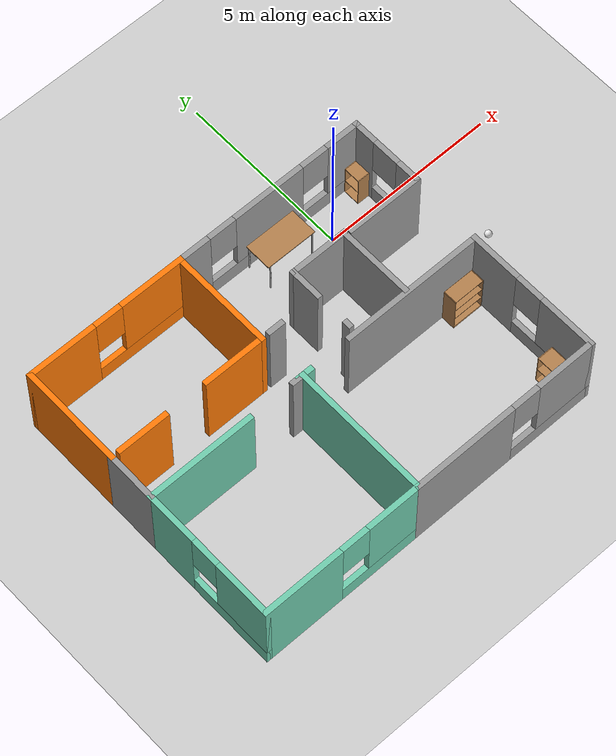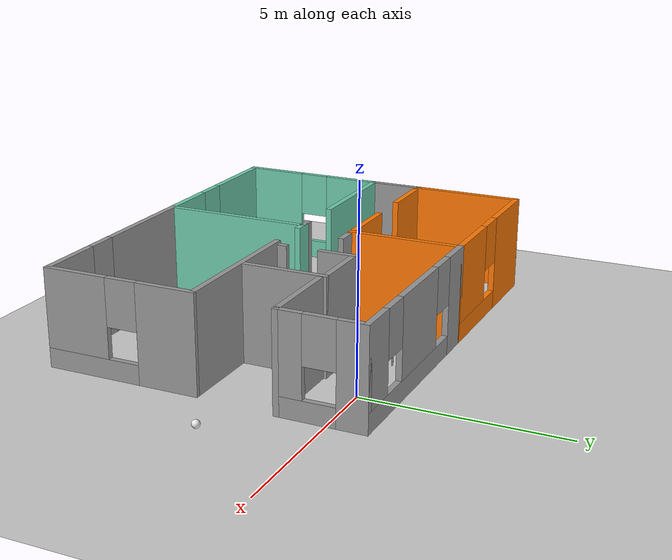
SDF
<sdf version="1.6">
 <world name="default">
  <light name="sun" type="directional">
   <pose>0 0 10 0 -0 0</pose>
   <diffuse>0.8 0.8 0.8 1</diffuse>
   <specular>0.2 0.2 0.2 1</specular>
   <attenuation>
    <range>1000</range>
    <constant>0.9</constant>
    <linear>0.01</linear>
    <quadratic>0.001</quadratic>
   </attenuation>
   <direction>-0.5 0.1 -0.9</direction>
  </light>
  <model name="ground_plane">
   <static>1</static>
   <link name="link">
    <collision name="collision">
     <geometry><plane><normal>0 0 1</normal><size>100 100</size></plane></geometry>
     <surface>
      <contact><collide_bitmask>65535</collide_bitmask></contact>
      <friction><ode><mu>100</mu><mu2>50</mu2></ode></friction>
     </surface>
    </collision>
    <visual name="visual">
     <cast_shadows>0</cast_shadows>
     <geometry><plane><normal>0 0 1</normal><size>100 100</size></plane></geometry>
     <material>
      <script><uri>file://media/materials/scripts/gazebo.material</uri><name>Gazebo/Grey</name></script>
     </material>
    </visual>
   </link>
  </model>
  <gravity>0 0 -9.8</gravity>
  <magnetic_field>6e-06 2.3e-05 -4.2e-05</magnetic_field>
  <atmosphere type="adiabatic"/>
  <physics name="default_physics" default="0" type="ode">
   <max_step_size>0.001</max_step_size>
   <real_time_factor>1</real_time_factor>
   <real_time_update_rate>1000</real_time_update_rate>
  </physics>
  <scene><ambient>0.4 0.4 0.4 1</ambient><background>0.7 0.7 0.7 1</background><shadows>1</shadows></scene>
  <spherical_coordinates>
   <surface_model>EARTH_WGS84</surface_model>
   <latitude_deg>0</latitude_deg>
   <longitude_deg>0</longitude_deg>
   <elevation>0</elevation>
   <heading_deg>0</heading_deg>
  </spherical_coordinates>
  <model name="apartment">
   <pose>-3.48039 -3.11301 0 0 -0 0</pose>
   <link name="Wall_0">
    <collision name="Wall_0_Collision">
     <geometry><box><size>3.0 0.15 2.5</size></box></geometry>
     <pose>0 0 1.25 0 -0 0</pose>
    </collision>
    <visual name="Wall_0_Visual">
     <pose>0 0 1.25 0 -0 0</pose>
     <geometry><box><size>3.0 0.15 2.5</size></box></geometry>
     <material>
      <script><uri>file://media/materials/scripts/gazebo.material</uri><name>Gazebo/Grey</name></script>
      <ambient>0.435294 0.796078 0.67451 1</ambient>
     </material>
     <meta><layer>0</layer></meta>
    </visual>
    <pose>-3.525 -0.175 0 0 -0 3.14159</pose>
   </link>
   <link name="Wall_1">
    <pose>-5.075 -2.1 0 0 0 -1.5708</pose>
    <visual name="Wall_1_Visual_0">
     <pose>-1.23469 0 1.25 0 -0 0</pose>
     <geometry><box><size>1.53062 0.15 2.5</size></box></geometry>
     <material>
      <script><uri>file://media/materials/scripts/gazebo.material</uri><name>Gazebo/Grey</name></script>
      <ambient>0.435294 0.796078 0.67451 1</ambient>
     </material>
     <meta><layer>0</layer></meta>
    </visual>
    <collision name="Wall_1_Collision_0">
     <geometry><box><size>1.53062 0.15 2.5</size></box></geometry>
     <pose>-1.23469 0 1.25 0 -0 0</pose>
    </collision>
    <visual name="Wall_1_Visual_1">
     <pose>0.765309 0 0.25 0 -0 0</pose>
     <geometry><box><size>2.46938 0.15 0.5</size></box></geometry>
     <material>
      <script><uri>file://media/materials/scripts/gazebo.material</uri><name>Gazebo/Grey</name></script>
      <ambient>0.435294 0.796078 0.67451 1</ambient>
     </material>
     <meta><layer>0</layer></meta>
    </visual>
    <collision name="Wall_1_Collision_1">
     <geometry><box><size>2.46938 0.15 0.5</size></box></geometry>
     <pose>0.765309 0 0.25 0 -0 0</pose>
    </collision>
    <visual name="Wall_1_Visual_2">
     <pose>1.16531 0 1.5 0 -0 0</pose>
     <geometry><box><size>1.66938 0.15 2</size></box></geometry>
     <material>
      <script><uri>file://media/materials/scripts/gazebo.material</uri><name>Gazebo/Grey</name></script>
      <ambient>0.435294 0.796078 0.67451 1</ambient>
     </material>
     <meta><layer>0</layer></meta>
    </visual>
    <collision name="Wall_1_Collision_2">
     <geometry><box><size>1.66938 0.15 2</size></box></geometry>
     <pose>1.16531 0 1.5 0 -0 0</pose>
    </collision>
    <visual name="Wall_1_Visual_3">
     <pose>-0.069383 0 1.9 0 -0 0</pose>
     <geometry><box><size>0.8 0.15 1.2</size></box></geometry>
     <material>
      <script><uri>file://media/materials/scripts/gazebo.material</uri><name>Gazebo/Grey</name></script>
      <ambient>0.435294 0.796078 0.67451 1</ambient>
     </material>
     <meta><layer>0</layer></meta>
    </visual>
    <collision name="Wall_1_Collision_3">
     <geometry><box><size>0.8 0.15 1.2</size></box></geometry>
     <pose>-0.069383 0 1.9 0 -0 0</pose>
    </collision>
   </link>
   <link name="Wall_12">
    <collision name="Wall_12_Collision">
     <geometry><box><size>2.25 0.15 2.5</size></box></geometry>
     <pose>0 0 1.25 0 -0 0</pose>
    </collision>
    <visual name="Wall_12_Visual">
     <pose>0 0 1.25 0 -0 0</pose>
     <geometry><box><size>2.25 0.15 2.5</size></box></geometry>
     <material>
      <script><uri>file://media/materials/scripts/gazebo.material</uri><name>Gazebo/Grey</name></script>
      <ambient>1 1 1 1</ambient>
     </material>
     <meta><layer>0</layer></meta>
    </visual>
    <pose>2.80076 0.944198 0 0 -0 1.5708</pose>
   </link>
   <link name="Wall_13">
    <collision name="Wall_13_Collision">
     <geometry><box><size>1.75 0.15 2.5</size></box></geometry>
     <pose>0 0 1.25 0 -0 0</pose>
    </collision>
    <visual name="Wall_13_Visual">
     <pose>0 0 1.25 0 -0 0</pose>
     <geometry><box><size>1.75 0.15 2.5</size></box></geometry>
     <material>
      <script><uri>file://media/materials/scripts/gazebo.material</uri><name>Gazebo/Grey</name></script>
      <ambient>1 1 1 1</ambient>
     </material>
     <meta><layer>0</layer></meta>
    </visual>
    <pose>2.00075 1.9942 0 0 -0 3.14159</pose>
   </link>
   <link name="Wall_18">
    <collision name="Wall_18_Collision">
     <geometry><box><size>1.5 0.15 2.5</size></box></geometry>
     <pose>0 0 1.25 0 -0 0</pose>
    </collision>
    <visual name="Wall_18_Visual">
     <pose>0 0 1.25 0 -0 0</pose>
     <geometry><box><size>1.5 0.15 2.5</size></box></geometry>
     <material>
      <script><uri>file://media/materials/scripts/gazebo.material</uri><name>Gazebo/Grey</name></script>
      <ambient>1 1 1 1</ambient>
     </material>
     <meta><layer>0</layer></meta>
    </visual>
    <pose>-5.075 0.5 0 0 -0 1.5708</pose>
   </link>
   <link name="Wall_19">
    <collision name="Wall_19_Collision">
     <geometry><box><size>1.5 0.15 2.5</size></box></geometry>
     <pose>0 0 1.25 0 -0 0</pose>
    </collision>
    <visual name="Wall_19_Visual">
     <pose>0 0 1.25 0 -0 0</pose>
     <geometry><box><size>1.5 0.15 2.5</size></box></geometry>
     <material>
      <script><uri>file://media/materials/scripts/gazebo.material</uri><name>Gazebo/Grey</name></script>
      <ambient>0.996078 0.47451 0.0196078 1</ambient>
     </material>
     <meta><layer>0</layer></meta>
    </visual>
    <pose>-4.15 1.175 0 0 -0 0</pose>
   </link>
   <link name="Wall_2">
    <pose>-2.775 -4.025 0 0 -0 0</pose>
    <visual name="Wall_2_Visual_0">
     <pose>-1.21423 0 1.25 0 -0 0</pose>
     <geometry><box><size>2.32154 0.15 2.5</size></box></geometry>
     <material>
      <script><uri>file://media/materials/scripts/gazebo.material</uri><name>Gazebo/Grey</name></script>
      <ambient>0.435294 0.796078 0.67451 1</ambient>
     </material>
     <meta><layer>0</layer></meta>
    </visual>
    <collision name="Wall_2_Collision_0">
     <geometry><box><size>2.32154 0.15 2.5</size></box></geometry>
     <pose>-1.21423 0 1.25 0 -0 0</pose>
    </collision>
    <visual name="Wall_2_Visual_1">
     <pose>1.16077 0 0.25 0 -0 0</pose>
     <geometry><box><size>2.42846 0.15 0.5</size></box></geometry>
     <material>
      <script><uri>file://media/materials/scripts/gazebo.material</uri><name>Gazebo/Grey</name></script>
      <ambient>0.435294 0.796078 0.67451 1</ambient>
     </material>
     <meta><layer>0</layer></meta>
    </visual>
    <collision name="Wall_2_Collision_1">
     <geometry><box><size>2.42846 0.15 0.5</size></box></geometry>
     <pose>1.16077 0 0.25 0 -0 0</pose>
    </collision>
    <visual name="Wall_2_Visual_2">
     <pose>1.56077 0 1.5 0 -0 0</pose>
     <geometry><box><size>1.62846 0.15 2</size></box></geometry>
     <material>
      <script><uri>file://media/materials/scripts/gazebo.material</uri><name>Gazebo/Grey</name></script>
      <ambient>0.435294 0.796078 0.67451 1</ambient>
     </material>
     <meta><layer>0</layer></meta>
    </visual>
    <collision name="Wall_2_Collision_2">
     <geometry><box><size>1.62846 0.15 2</size></box></geometry>
     <pose>1.56077 0 1.5 0 -0 0</pose>
    </collision>
    <visual name="Wall_2_Visual_3">
     <pose>0.346537 0 1.9 0 -0 0</pose>
     <geometry><box><size>0.8 0.15 1.2</size></box></geometry>
     <material>
      <script><uri>file://media/materials/scripts/gazebo.material</uri><name>Gazebo/Grey</name></script>
      <ambient>0.435294 0.796078 0.67451 1</ambient>
     </material>
     <meta><layer>0</layer></meta>
    </visual>
    <collision name="Wall_2_Collision_3">
     <geometry><box><size>0.8 0.15 1.2</size></box></geometry>
     <pose>0.346537 0 1.9 0 -0 0</pose>
    </collision>
   </link>
   <link name="Wall_21">
    <collision name="Wall_21_Collision">
     <geometry><box><size>1.7 0.15 2.5</size></box></geometry>
     <pose>0 0 1.25 0 -0 0</pose>
    </collision>
    <visual name="Wall_21_Visual">
     <pose>0 0 1.25 0 -0 0</pose>
     <geometry><box><size>1.7 0.15 2.5</size></box></geometry>
     <material>
      <script><uri>file://media/materials/scripts/gazebo.material</uri><name>Gazebo/Grey</name></script>
      <ambient>0.996078 0.47451 0.0196078 1</ambient>
     </material>
     <meta><layer>0</layer></meta>
    </visual>
    <pose>-1.45 1.175 0 0 -0 0</pose>
   </link>
   <link name="Wall_22">
    <collision name="Wall_22_Collision">
     <geometry><box><size>3 0.15 2.5</size></box></geometry>
     <pose>0 0 1.25 0 -0 0</pose>
    </collision>
    <visual name="Wall_22_Visual">
     <pose>0 0 1.25 0 -0 0</pose>
     <geometry><box><size>3 0.15 2.5</size></box></geometry>
     <material>
      <script><uri>file://media/materials/scripts/gazebo.material</uri><name>Gazebo/Grey</name></script>
      <ambient>0.996078 0.47451 0.0196078 1</ambient>
     </material>
     <meta><layer>0</layer></meta>
    </visual>
    <pose>-0.525 2.6 0 0 -0 1.5708</pose>
   </link>
   <link name="Wall_23">
    <pose>2.275 4.025 0 0 -0 0</pose>
    <visual name="Wall_23_Visual_0">
     <pose>-2.39764 0 1.25 0 -0 0</pose>
     <geometry><box><size>0.954728 0.15 2.5</size></box></geometry>
     <material>
      <script><uri>file://media/materials/scripts/gazebo.material</uri><name>Gazebo/Grey</name></script>
      <ambient>1 1 1 1</ambient>
     </material>
     <meta><layer>0</layer></meta>
    </visual>
    <collision name="Wall_23_Collision_0">
     <geometry><box><size>0.954728 0.15 2.5</size></box></geometry>
     <pose>-2.39764 0 1.25 0 -0 0</pose>
    </collision>
    <visual name="Wall_23_Visual_1">
     <pose>0.477364 0 0.25 0 -0 0</pose>
     <geometry><box><size>4.79527 0.15 0.5</size></box></geometry>
     <material>
      <script><uri>file://media/materials/scripts/gazebo.material</uri><name>Gazebo/Grey</name></script>
      <ambient>1 1 1 1</ambient>
     </material>
     <meta><layer>0</layer></meta>
    </visual>
    <collision name="Wall_23_Collision_1">
     <geometry><box><size>4.79527 0.15 0.5</size></box></geometry>
     <pose>0.477364 0 0.25 0 -0 0</pose>
    </collision>
    <visual name="Wall_23_Visual_2">
     <pose>-0.051107 0 1.5 0 -0 0</pose>
     <geometry><box><size>2.13833 0.15 2</size></box></geometry>
     <material>
      <script><uri>file://media/materials/scripts/gazebo.material</uri><name>Gazebo/Grey</name></script>
      <ambient>1 1 1 1</ambient>
     </material>
     <meta><layer>0</layer></meta>
    </visual>
    <collision name="Wall_23_Collision_2">
     <geometry><box><size>2.13833 0.15 2</size></box></geometry>
     <pose>-0.051107 0 1.5 0 -0 0</pose>
    </collision>
    <visual name="Wall_23_Visual_3">
     <pose>2.34653 0 1.5 0 -0 0</pose>
     <geometry><box><size>1.05694 0.15 2</size></box></geometry>
     <material>
      <script><uri>file://media/materials/scripts/gazebo.material</uri><name>Gazebo/Grey</name></script>
      <ambient>1 1 1 1</ambient>
     </material>
     <meta><layer>0</layer></meta>
    </visual>
    <collision name="Wall_23_Collision_3">
     <geometry><box><size>1.05694 0.15 2</size></box></geometry>
     <pose>2.34653 0 1.5 0 -0 0</pose>
    </collision>
    <visual name="Wall_23_Visual_4">
     <pose>-1.52027 0 1.9 0 -0 0</pose>
     <geometry><box><size>0.8 0.15 1.2</size></box></geometry>
     <material>
      <script><uri>file://media/materials/scripts/gazebo.material</uri><name>Gazebo/Grey</name></script>
      <ambient>1 1 1 1</ambient>
     </material>
     <meta><layer>0</layer></meta>
    </visual>
    <collision name="Wall_23_Collision_4">
     <geometry><box><size>0.8 0.15 1.2</size></box></geometry>
     <pose>-1.52027 0 1.9 0 -0 0</pose>
    </collision>
    <visual name="Wall_23_Visual_5">
     <pose>1.41806 0 1.9 0 -0 0</pose>
     <geometry><box><size>0.8 0.15 1.2</size></box></geometry>
     <material>
      <script><uri>file://media/materials/scripts/gazebo.material</uri><name>Gazebo/Grey</name></script>
      <ambient>1 1 1 1</ambient>
     </material>
     <meta><layer>0</layer></meta>
    </visual>
    <collision name="Wall_23_Collision_5">
     <geometry><box><size>0.8 0.15 1.2</size></box></geometry>
     <pose>1.41806 0 1.9 0 -0 0</pose>
    </collision>
   </link>
   <link name="Wall_24">
    <pose>5.075 2.975 0 0 0 -1.5708</pose>
    <visual name="Wall_24_Visual_0">
     <pose>-0.752025 0 1.25 0 -0 0</pose>
     <geometry><box><size>0.74595 0.15 2.5</size></box></geometry>
     <material>
      <script><uri>file://media/materials/scripts/gazebo.material</uri><name>Gazebo/Grey</name></script>
      <ambient>1 1 1 1</ambient>
     </material>
     <meta><layer>0</layer></meta>
    </visual>
    <collision name="Wall_24_Collision_0">
     <geometry><box><size>0.74595 0.15 2.5</size></box></geometry>
     <pose>-0.752025 0 1.25 0 -0 0</pose>
    </collision>
    <visual name="Wall_24_Visual_1">
     <pose>0.372975 0 0.25 0 -0 0</pose>
     <geometry><box><size>1.50405 0.15 0.5</size></box></geometry>
     <material>
      <script><uri>file://media/materials/scripts/gazebo.material</uri><name>Gazebo/Grey</name></script>
      <ambient>1 1 1 1</ambient>
     </material>
     <meta><layer>0</layer></meta>
    </visual>
    <collision name="Wall_24_Collision_1">
     <geometry><box><size>1.50405 0.15 0.5</size></box></geometry>
     <pose>0.372975 0 0.25 0 -0 0</pose>
    </collision>
    <visual name="Wall_24_Visual_2">
     <pose>0.772975 0 1.5 0 -0 0</pose>
     <geometry><box><size>0.70405 0.15 2</size></box></geometry>
     <material>
      <script><uri>file://media/materials/scripts/gazebo.material</uri><name>Gazebo/Grey</name></script>
      <ambient>1 1 1 1</ambient>
     </material>
     <meta><layer>0</layer></meta>
    </visual>
    <collision name="Wall_24_Collision_2">
     <geometry><box><size>0.70405 0.15 2</size></box></geometry>
     <pose>0.772975 0 1.5 0 -0 0</pose>
    </collision>
    <visual name="Wall_24_Visual_3">
     <pose>0.02095 0 1.9 0 -0 0</pose>
     <geometry><box><size>0.8 0.15 1.2</size></box></geometry>
     <material>
      <script><uri>file://media/materials/scripts/gazebo.material</uri><name>Gazebo/Grey</name></script>
      <ambient>1 1 1 1</ambient>
     </material>
     <meta><layer>0</layer></meta>
    </visual>
    <collision name="Wall_24_Collision_3">
     <geometry><box><size>0.8 0.15 1.2</size></box></geometry>
     <pose>0.02095 0 1.9 0 -0 0</pose>
    </collision>
   </link>
   <link name="Wall_25">
    <collision name="Wall_25_Collision">
     <geometry><box><size>2.25 0.15 2.5</size></box></geometry>
     <pose>0 0 1.25 0 -0 0</pose>
    </collision>
    <visual name="Wall_25_Visual">
     <pose>0 0 1.25 0 -0 0</pose>
     <geometry><box><size>2.25 0.15 2.5</size></box></geometry>
     <material>
      <script><uri>file://media/materials/scripts/gazebo.material</uri><name>Gazebo/Grey</name></script>
      <ambient>1 1 1 1</ambient>
     </material>
     <meta><layer>0</layer></meta>
    </visual>
    <pose>4.025 1.925 0 0 -0 3.14159</pose>
   </link>
   <link name="Wall_27">
    <collision name="Wall_27_Collision">
     <geometry><box><size>0.5 0.15 2.5</size></box></geometry>
     <pose>0 0 1.25 0 -0 0</pose>
    </collision>
    <visual name="Wall_27_Visual">
     <pose>0 0 1.25 0 -0 0</pose>
     <geometry><box><size>0.5 0.15 2.5</size></box></geometry>
     <material>
      <script><uri>file://media/materials/scripts/gazebo.material</uri><name>Gazebo/Grey</name></script>
      <ambient>1 1 1 1</ambient>
     </material>
     <meta><layer>0</layer></meta>
    </visual>
    <pose>-0.1 1.175 0 0 -0 0</pose>
   </link>
   <link name="Wall_29">
    <collision name="Wall_29_Collision">
     <geometry><box><size>3 0.15 2.5</size></box></geometry>
     <pose>0 0 1.25 0 -0 0</pose>
    </collision>
    <visual name="Wall_29_Visual">
     <pose>0 0 1.25 0 -0 0</pose>
     <geometry><box><size>3 0.15 2.5</size></box></geometry>
     <material>
      <script><uri>file://media/materials/scripts/gazebo.material</uri><name>Gazebo/Grey</name></script>
      <ambient>0.996078 0.47451 0.0196078 1</ambient>
     </material>
     <meta><layer>0</layer></meta>
    </visual>
    <pose>-5.075 2.6 0 0 -0 1.5708</pose>
   </link>
   <link name="Wall_3">
    <collision name="Wall_3_Collision">
     <geometry><box><size>4 0.15 2.5</size></box></geometry>
     <pose>0 0 1.25 0 -0 0</pose>
    </collision>
    <visual name="Wall_3_Visual">
     <pose>0 0 1.25 0 -0 0</pose>
     <geometry><box><size>4 0.15 2.5</size></box></geometry>
     <material>
      <script><uri>file://media/materials/scripts/gazebo.material</uri><name>Gazebo/Grey</name></script>
      <ambient>0.435294 0.796078 0.67451 1</ambient>
     </material>
     <meta><layer>0</layer></meta>
    </visual>
    <pose>-0.475 -2.1 0 0 -0 1.5708</pose>
   </link>
   <link name="Wall_30">
    <pose>-2.8 4.025 0 0 -0 0</pose>
    <visual name="Wall_30_Visual_0">
     <pose>-1.35539 0 1.25 0 -0 0</pose>
     <geometry><box><size>1.98923 0.15 2.5</size></box></geometry>
     <material>
      <script><uri>file://media/materials/scripts/gazebo.material</uri><name>Gazebo/Grey</name></script>
      <ambient>0.996078 0.47451 0.0196078 1</ambient>
     </material>
     <meta><layer>0</layer></meta>
    </visual>
    <collision name="Wall_30_Collision_0">
     <geometry><box><size>1.98923 0.15 2.5</size></box></geometry>
     <pose>-1.35539 0 1.25 0 -0 0</pose>
    </collision>
    <visual name="Wall_30_Visual_1">
     <pose>0.994613 0 0.25 0 -0 0</pose>
     <geometry><box><size>2.71077 0.15 0.5</size></box></geometry>
     <material>
      <script><uri>file://media/materials/scripts/gazebo.material</uri><name>Gazebo/Grey</name></script>
      <ambient>0.996078 0.47451 0.0196078 1</ambient>
     </material>
     <meta><layer>0</layer></meta>
    </visual>
    <collision name="Wall_30_Collision_1">
     <geometry><box><size>2.71077 0.15 0.5</size></box></geometry>
     <pose>0.994613 0 0.25 0 -0 0</pose>
    </collision>
    <visual name="Wall_30_Visual_2">
     <pose>1.39461 0 1.5 0 -0 0</pose>
     <geometry><box><size>1.91077 0.15 2</size></box></geometry>
     <material>
      <script><uri>file://media/materials/scripts/gazebo.material</uri><name>Gazebo/Grey</name></script>
      <ambient>0.996078 0.47451 0.0196078 1</ambient>
     </material>
     <meta><layer>0</layer></meta>
    </visual>
    <collision name="Wall_30_Collision_2">
     <geometry><box><size>1.91077 0.15 2</size></box></geometry>
     <pose>1.39461 0 1.5 0 -0 0</pose>
    </collision>
    <visual name="Wall_30_Visual_3">
     <pose>0.039225 0 1.9 0 -0 0</pose>
     <geometry><box><size>0.8 0.15 1.2</size></box></geometry>
     <material>
      <script><uri>file://media/materials/scripts/gazebo.material</uri><name>Gazebo/Grey</name></script>
      <ambient>0.996078 0.47451 0.0196078 1</ambient>
     </material>
     <meta><layer>0</layer></meta>
    </visual>
    <collision name="Wall_30_Collision_3">
     <geometry><box><size>0.8 0.15 1.2</size></box></geometry>
     <pose>0.039225 0 1.9 0 -0 0</pose>
    </collision>
   </link>
   <link name="Wall_33">
    <collision name="Wall_33_Collision">
     <geometry><box><size>4.05 0.15 2.5</size></box></geometry>
     <pose>0 0 1.25 0 -0 0</pose>
    </collision>
    <visual name="Wall_33_Visual">
     <pose>0 0 1.25 0 -0 0</pose>
     <geometry><box><size>4.05 0.15 2.5</size></box></geometry>
     <material>
      <script><uri>file://media/materials/scripts/gazebo.material</uri><name>Gazebo/Grey</name></script>
      <ambient>1 1 1 1</ambient>
     </material>
     <meta><layer>0</layer></meta>
    </visual>
    <pose>2.925 -0.175 0 0 -0 0</pose>
   </link>
   <link name="Wall_34">
    <pose>4.975 -2.1 0 0 0 -1.5708</pose>
    <visual name="Wall_34_Visual_0">
     <pose>-1.23469 0 1.25 0 -0 0</pose>
     <geometry><box><size>1.53062 0.15 2.5</size></box></geometry>
     <material>
      <script><uri>file://media/materials/scripts/gazebo.material</uri><name>Gazebo/Grey</name></script>
      <ambient>1 1 1 1</ambient>
     </material>
     <meta><layer>0</layer></meta>
    </visual>
    <collision name="Wall_34_Collision_0">
     <geometry><box><size>1.53062 0.15 2.5</size></box></geometry>
     <pose>-1.23469 0 1.25 0 -0 0</pose>
    </collision>
    <visual name="Wall_34_Visual_1">
     <pose>0.765309 0 0.25 0 -0 0</pose>
     <geometry><box><size>2.46938 0.15 0.5</size></box></geometry>
     <material>
      <script><uri>file://media/materials/scripts/gazebo.material</uri><name>Gazebo/Grey</name></script>
      <ambient>1 1 1 1</ambient>
     </material>
     <meta><layer>0</layer></meta>
    </visual>
    <collision name="Wall_34_Collision_1">
     <geometry><box><size>2.46938 0.15 0.5</size></box></geometry>
     <pose>0.765309 0 0.25 0 -0 0</pose>
    </collision>
    <visual name="Wall_34_Visual_2">
     <pose>1.16531 0 1.5 0 -0 0</pose>
     <geometry><box><size>1.66938 0.15 2</size></box></geometry>
     <material>
      <script><uri>file://media/materials/scripts/gazebo.material</uri><name>Gazebo/Grey</name></script>
      <ambient>1 1 1 1</ambient>
     </material>
     <meta><layer>0</layer></meta>
    </visual>
    <collision name="Wall_34_Collision_2">
     <geometry><box><size>1.66938 0.15 2</size></box></geometry>
     <pose>1.16531 0 1.5 0 -0 0</pose>
    </collision>
    <visual name="Wall_34_Visual_3">
     <pose>-0.069383 0 1.9 0 -0 0</pose>
     <geometry><box><size>0.8 0.15 1.2</size></box></geometry>
     <material>
      <script><uri>file://media/materials/scripts/gazebo.material</uri><name>Gazebo/Grey</name></script>
      <ambient>1 1 1 1</ambient>
     </material>
     <meta><layer>0</layer></meta>
    </visual>
    <collision name="Wall_34_Collision_3">
     <geometry><box><size>0.8 0.15 1.2</size></box></geometry>
     <pose>-0.069383 0 1.9 0 -0 0</pose>
    </collision>
   </link>
   <link name="Wall_36">
    <collision name="Wall_36_Collision">
     <geometry><box><size>1 0.15 2.5</size></box></geometry>
     <pose>0 0 1.25 0 -0 0</pose>
    </collision>
    <visual name="Wall_36_Visual">
     <pose>0 0 1.25 0 -0 0</pose>
     <geometry><box><size>1 0.15 2.5</size></box></geometry>
     <material>
      <script><uri>file://media/materials/scripts/gazebo.material</uri><name>Gazebo/Grey</name></script>
      <ambient>1 1 1 1</ambient>
     </material>
     <meta><layer>0</layer></meta>
    </visual>
    <pose>1.20076 1.5692 0 0 0 -1.5708</pose>
   </link>
   <link name="Wall_38">
    <collision name="Wall_38_Collision">
     <geometry><box><size>0.25 0.15 2.5</size></box></geometry>
     <pose>0 0 1.25 0 -0 0</pose>
    </collision>
    <visual name="Wall_38_Visual">
     <pose>0 0 1.25 0 -0 0</pose>
     <geometry><box><size>0.25 0.15 2.5</size></box></geometry>
     <material>
      <script><uri>file://media/materials/scripts/gazebo.material</uri><name>Gazebo/Grey</name></script>
      <ambient>1 1 1 1</ambient>
     </material>
     <meta><layer>0</layer></meta>
    </visual>
    <pose>1.20076 0.119198 0 0 0 -1.5708</pose>
   </link>
   <link name="Wall_4">
    <collision name="Wall_4_Collision">
     <geometry><box><size>0.4 0.15 2.5</size></box></geometry>
     <pose>0 0 1.25 0 -0 0</pose>
    </collision>
    <visual name="Wall_4_Visual">
     <pose>0 0 1.25 0 -0 0</pose>
     <geometry><box><size>0.4 0.15 2.5</size></box></geometry>
     <material>
      <script><uri>file://media/materials/scripts/gazebo.material</uri><name>Gazebo/Grey</name></script>
      <ambient>1 1 1 1</ambient>
     </material>
     <meta><layer>0</layer></meta>
    </visual>
    <pose>-0.642396 -0.175 0 0 -0 3.14159</pose>
   </link>
   <link name="Wall_5">
    <collision name="Wall_5_Collision">
     <geometry><box><size>0.5 0.15 2.5</size></box></geometry>
     <pose>0 0 1.25 0 -0 0</pose>
    </collision>
    <visual name="Wall_5_Visual">
     <pose>0 0 1.25 0 -0 0</pose>
     <geometry><box><size>0.5 0.15 2.5</size></box></geometry>
     <material>
      <script><uri>file://media/materials/scripts/gazebo.material</uri><name>Gazebo/Grey</name></script>
      <ambient>0.435294 0.796078 0.67451 1</ambient>
     </material>
     <meta><layer>0</layer></meta>
    </visual>
    <pose>-0.415209 -0.175 0 0 -0 0</pose>
   </link>
   <link name="Wall_7">
    <pose>2.2 -4.025 0 0 -0 0</pose>
    <visual name="Wall_7_Visual_0">
     <pose>-1.23074 0 1.25 0 -0 0</pose>
     <geometry><box><size>3.03851 0.15 2.5</size></box></geometry>
     <material>
      <script><uri>file://media/materials/scripts/gazebo.material</uri><name>Gazebo/Grey</name></script>
      <ambient>1 1 1 1</ambient>
     </material>
     <meta><layer>0</layer></meta>
    </visual>
    <collision name="Wall_7_Collision_0">
     <geometry><box><size>3.03851 0.15 2.5</size></box></geometry>
     <pose>-1.23074 0 1.25 0 -0 0</pose>
    </collision>
    <visual name="Wall_7_Visual_1">
     <pose>1.51926 0 0.25 0 -0 0</pose>
     <geometry><box><size>2.46149 0.15 0.5</size></box></geometry>
     <material>
      <script><uri>file://media/materials/scripts/gazebo.material</uri><name>Gazebo/Grey</name></script>
      <ambient>1 1 1 1</ambient>
     </material>
     <meta><layer>0</layer></meta>
    </visual>
    <collision name="Wall_7_Collision_1">
     <geometry><box><size>2.46149 0.15 0.5</size></box></geometry>
     <pose>1.51926 0 0.25 0 -0 0</pose>
    </collision>
    <visual name="Wall_7_Visual_2">
     <pose>1.91926 0 1.5 0 -0 0</pose>
     <geometry><box><size>1.66149 0.15 2</size></box></geometry>
     <material>
      <script><uri>file://media/materials/scripts/gazebo.material</uri><name>Gazebo/Grey</name></script>
      <ambient>1 1 1 1</ambient>
     </material>
     <meta><layer>0</layer></meta>
    </visual>
    <collision name="Wall_7_Collision_2">
     <geometry><box><size>1.66149 0.15 2</size></box></geometry>
     <pose>1.91926 0 1.5 0 -0 0</pose>
    </collision>
    <visual name="Wall_7_Visual_3">
     <pose>0.688515 0 1.9 0 -0 0</pose>
     <geometry><box><size>0.8 0.15 1.2</size></box></geometry>
     <material>
      <script><uri>file://media/materials/scripts/gazebo.material</uri><name>Gazebo/Grey</name></script>
      <ambient>1 1 1 1</ambient>
     </material>
     <meta><layer>0</layer></meta>
    </visual>
    <collision name="Wall_7_Collision_3">
     <geometry><box><size>0.8 0.15 1.2</size></box></geometry>
     <pose>0.688515 0 1.9 0 -0 0</pose>
    </collision>
   </link>
   <static>1</static>
  </model>
  <model name="my_ball">
   <link name="link_0">
    <inertial>
     <mass>1</mass>
     <inertia><ixx>0.1</ixx><ixy>0</ixy><ixz>0</ixz><iyy>0.1</iyy><iyz>0</iyz><izz>0.1</izz></inertia>
    </inertial>
    <visual name="visual">
     <geometry><sphere><radius>0.1</radius></sphere></geometry>
     <material>
      <lighting>1</lighting>
      <script><uri>file://media/materials/scripts/gazebo.material</uri><name>Gazebo/White</name></script>
      <shader type="pixel"><normal_map>__default__</normal_map></shader>
      <ambient>1 1 1 1</ambient>
      <diffuse>1 1 1 1</diffuse>
      <specular>1 1 1 1</specular>
      <emissive>1 1 1 1</emissive>
     </material>
    </visual>
    <collision name="collision">
     <geometry><sphere><radius>0.1</radius></sphere></geometry>
     <surface>
      <friction>
       <ode><mu>1</mu><mu2>1</mu2><fdir1>0 0 0</fdir1><slip1>0</slip1><slip2>0</slip2></ode>
       <torsional>
        <coefficient>1</coefficient>
        <patch_radius>0</patch_radius>
        <surface_radius>0</surface_radius>
        <use_patch_radius>1</use_patch_radius>
        <ode><slip>0</slip></ode>
       </torsional>
      </friction>
      <bounce><restitution_coefficient>0</restitution_coefficient><threshold>1e+06</threshold></bounce>
      <contact>
       <collide_without_contact>0</collide_without_contact>
       <collide_without_contact_bitmask>1</collide_without_contact_bitmask>
       <collide_bitmask>1</collide_bitmask>
       <ode>
        <soft_cfm>0</soft_cfm>
        <soft_erp>0.2</soft_erp>
        <kp>1e+13</kp>
        <kd>1</kd>
        <max_vel>0.01</max_vel>
        <min_depth>0</min_depth>
       </ode>
       <bullet>
        <split_impulse>1</split_impulse>
        <split_impulse_penetration_threshold>-0.01</split_impulse_penetration_threshold>
        <soft_cfm>0</soft_cfm>
        <soft_erp>0.2</soft_erp>
        <kp>1e+13</kp>
        <kd>1</kd>
       </bullet>
      </contact>
     </surface>
    </collision>
   </link>
   <static>0</static>
   <pose>2.88921 -2.46188 0.1 0 -0 0</pose>
  </model>
  <model name="table">
   <static>1</static>
   <link name="link">
    <collision name="surface">
     <pose>0 0 1 0 -0 0</pose>
     <geometry><box><size>1.5 0.8 0.03</size></box></geometry>
     <surface><friction><ode><mu>0.6</mu><mu2>0.6</mu2></ode></friction></surface>
    </collision>
    <visual name="visual1">
     <pose>0 0 1 0 -0 0</pose>
     <geometry><box><size>1.5 0.8 0.03</size></box></geometry>
     <material>
      <script><uri>file://media/materials/scripts/gazebo.material</uri><name>Gazebo/Wood</name></script>
     </material>
    </visual>
    <collision name="front_left_leg">
     <pose>0.68 0.38 0.5 0 -0 0</pose>
     <geometry><cylinder><radius>0.02</radius><length>1</length></cylinder></geometry>
    </collision>
    <visual name="front_left_leg">
     <pose>0.68 0.38 0.5 0 -0 0</pose>
     <geometry><cylinder><radius>0.02</radius><length>1</length></cylinder></geometry>
     <material>
      <script><uri>file://media/materials/scripts/gazebo.material</uri><name>Gazebo/Grey</name></script>
     </material>
    </visual>
    <collision name="front_right_leg">
     <pose>0.68 -0.38 0.5 0 -0 0</pose>
     <geometry><cylinder><radius>0.02</radius><length>1</length></cylinder></geometry>
    </collision>
    <visual name="front_right_leg">
     <pose>0.68 -0.38 0.5 0 -0 0</pose>
     <geometry><cylinder><radius>0.02</radius><length>1</length></cylinder></geometry>
     <material>
      <script><uri>file://media/materials/scripts/gazebo.material</uri><name>Gazebo/Grey</name></script>
     </material>
    </visual>
    <collision name="back_right_leg">
     <pose>-0.68 -0.38 0.5 0 -0 0</pose>
     <geometry><cylinder><radius>0.02</radius><length>1</length></cylinder></geometry>
    </collision>
    <visual name="back_right_leg">
     <pose>-0.68 -0.38 0.5 0 -0 0</pose>
     <geometry><cylinder><radius>0.02</radius><length>1</length></cylinder></geometry>
     <material>
      <script><uri>file://media/materials/scripts/gazebo.material</uri><name>Gazebo/Grey</name></script>
     </material>
    </visual>
    <collision name="back_left_leg">
     <pose>-0.68 0.38 0.5 0 -0 0</pose>
     <geometry><cylinder><radius>0.02</radius><length>1</length></cylinder></geometry>
    </collision>
    <visual name="back_left_leg">
     <pose>-0.68 0.38 0.5 0 -0 0</pose>
     <geometry><cylinder><radius>0.02</radius><length>1</length></cylinder></geometry>
     <material>
      <script><uri>file://media/materials/scripts/gazebo.material</uri><name>Gazebo/Grey</name></script>
     </material>
    </visual>
   </link>
   <pose>-1.31126 0.413885 0 0 -0 0</pose>
  </model>
  <model name="cabinet">
   <static>1</static>
   <link name="cabinet_bottom_plate">
    <inertial>
     <pose>0 0 -1 0 -0 0</pose>
     <inertia><ixx>2.05</ixx><ixy>0</ixy><ixz>0</ixz><iyy>2.05</iyy><iyz>0</iyz><izz>2.05</izz></inertia>
     <mass>25</mass>
    </inertial>
    <collision name="cabinet_bottom_plate_geom">
     <pose>0 0 0.01 0 -0 0</pose>
     <geometry><box><size>0.45 0.45 0.02</size></box></geometry>
    </collision>
    <visual name="cabinet_bottom_plate_geom_visual">
     <pose>0 0 0.01 0 -0 0</pose>
     <geometry><box><size>0.45 0.45 0.02</size></box></geometry>
     <material>
      <script><uri>file://media/materials/scripts/gazebo.material</uri><name>Gazebo/Wood</name></script>
     </material>
    </visual>
    <collision name="cabinet_bottom_plate_geom_cabinet_back_plate">
     <pose>0.235 0 0.51 0 -0 0</pose>
     <geometry><box><size>0.02 0.45 1.02</size></box></geometry>
    </collision>
    <visual name="cabinet_bottom_plate_geom_cabinet_back_plate_visual">
     <pose>0.235 0 0.51 0 -0 0</pose>
     <geometry><box><size>0.02 0.45 1.02</size></box></geometry>
     <material>
      <script><uri>file://media/materials/scripts/gazebo.material</uri><name>Gazebo/Wood</name></script>
     </material>
    </visual>
    <collision name="cabinet_bottom_plate_geom_cabinet_left_plate">
     <pose>0 0.235 0.51 0 -0 0</pose>
     <geometry><box><size>0.45 0.02 1.02</size></box></geometry>
    </collision>
    <visual name="cabinet_bottom_plate_geom_cabinet_left_plate_visual">
     <pose>0 0.235 0.51 0 -0 0</pose>
     <geometry><box><size>0.45 0.02 1.02</size></box></geometry>
     <material>
      <script><uri>file://media/materials/scripts/gazebo.material</uri><name>Gazebo/Wood</name></script>
     </material>
    </visual>
    <collision name="cabinet_bottom_plate_geom_cabinet_middle_plate">
     <pose>0 0 0.51 0 -0 0</pose>
     <geometry><box><size>0.45 0.45 0.02</size></box></geometry>
    </collision>
    <visual name="cabinet_bottom_plate_geom_cabinet_middle_plate_visual">
     <pose>0 0 0.51 0 -0 0</pose>
     <geometry><box><size>0.45 0.45 0.02</size></box></geometry>
     <material>
      <script><uri>file://media/materials/scripts/gazebo.material</uri><name>Gazebo/Wood</name></script>
     </material>
    </visual>
    <collision name="cabinet_bottom_plate_geom_cabinet_right_plate">
     <pose>0 -0.235 0.51 0 -0 0</pose>
     <geometry><box><size>0.45 0.02 1.02</size></box></geometry>
    </collision>
    <visual name="cabinet_bottom_plate_geom_cabinet_right_plate_visual">
     <pose>0 -0.235 0.51 0 -0 0</pose>
     <geometry><box><size>0.45 0.02 1.02</size></box></geometry>
     <material>
      <script><uri>file://media/materials/scripts/gazebo.material</uri><name>Gazebo/Wood</name></script>
     </material>
    </visual>
    <collision name="cabinet_bottom_plate_geom_cabinet_top_plate">
     <pose>0 0 1.01 0 -0 0</pose>
     <geometry><box><size>0.45 0.45 0.02</size></box></geometry>
    </collision>
    <visual name="cabinet_bottom_plate_geom_cabinet_top_plate_visual">
     <pose>0 0 1.01 0 -0 0</pose>
     <geometry><box><size>0.45 0.45 0.02</size></box></geometry>
     <material>
      <script><uri>file://media/materials/scripts/gazebo.material</uri><name>Gazebo/Wood</name></script>
     </material>
    </visual>
   </link>
   <pose>1.39111 0.589658 0 0 -0 0</pose>
  </model>
  <model name="cabinet_0">
   <static>1</static>
   <link name="cabinet_bottom_plate">
    <inertial>
     <pose>0 0 -1 0 -0 0</pose>
     <inertia><ixx>2.05</ixx><ixy>0</ixy><ixz>0</ixz><iyy>2.05</iyy><iyz>0</iyz><izz>2.05</izz></inertia>
     <mass>25</mass>
    </inertial>
    <collision name="cabinet_bottom_plate_geom">
     <pose>0 0 0.01 0 -0 0</pose>
     <geometry><box><size>0.45 0.45 0.02</size></box></geometry>
    </collision>
    <visual name="cabinet_bottom_plate_geom_visual">
     <pose>0 0 0.01 0 -0 0</pose>
     <geometry><box><size>0.45 0.45 0.02</size></box></geometry>
     <material>
      <script><uri>file://media/materials/scripts/gazebo.material</uri><name>Gazebo/Wood</name></script>
     </material>
    </visual>
    <collision name="cabinet_bottom_plate_geom_cabinet_back_plate">
     <pose>0.235 0 0.51 0 -0 0</pose>
     <geometry><box><size>0.02 0.45 1.02</size></box></geometry>
    </collision>
    <visual name="cabinet_bottom_plate_geom_cabinet_back_plate_visual">
     <pose>0.235 0 0.51 0 -0 0</pose>
     <geometry><box><size>0.02 0.45 1.02</size></box></geometry>
     <material>
      <script><uri>file://media/materials/scripts/gazebo.material</uri><name>Gazebo/Wood</name></script>
     </material>
    </visual>
    <collision name="cabinet_bottom_plate_geom_cabinet_left_plate">
     <pose>0 0.235 0.51 0 -0 0</pose>
     <geometry><box><size>0.45 0.02 1.02</size></box></geometry>
    </collision>
    <visual name="cabinet_bottom_plate_geom_cabinet_left_plate_visual">
     <pose>0 0.235 0.51 0 -0 0</pose>
     <geometry><box><size>0.45 0.02 1.02</size></box></geometry>
     <material>
      <script><uri>file://media/materials/scripts/gazebo.material</uri><name>Gazebo/Wood</name></script>
     </material>
    </visual>
    <collision name="cabinet_bottom_plate_geom_cabinet_middle_plate">
     <pose>0 0 0.51 0 -0 0</pose>
     <geometry><box><size>0.45 0.45 0.02</size></box></geometry>
    </collision>
    <visual name="cabinet_bottom_plate_geom_cabinet_middle_plate_visual">
     <pose>0 0 0.51 0 -0 0</pose>
     <geometry><box><size>0.45 0.45 0.02</size></box></geometry>
     <material>
      <script><uri>file://media/materials/scripts/gazebo.material</uri><name>Gazebo/Wood</name></script>
     </material>
    </visual>
    <collision name="cabinet_bottom_plate_geom_cabinet_right_plate">
     <pose>0 -0.235 0.51 0 -0 0</pose>
     <geometry><box><size>0.45 0.02 1.02</size></box></geometry>
    </collision>
    <visual name="cabinet_bottom_plate_geom_cabinet_right_plate_visual">
     <pose>0 -0.235 0.51 0 -0 0</pose>
     <geometry><box><size>0.45 0.02 1.02</size></box></geometry>
     <material>
      <script><uri>file://media/materials/scripts/gazebo.material</uri><name>Gazebo/Wood</name></script>
     </material>
    </visual>
    <collision name="cabinet_bottom_plate_geom_cabinet_top_plate">
     <pose>0 0 1.01 0 -0 0</pose>
     <geometry><box><size>0.45 0.45 0.02</size></box></geometry>
    </collision>
    <visual name="cabinet_bottom_plate_geom_cabinet_top_plate_visual">
     <pose>0 0 1.01 0 -0 0</pose>
     <geometry><box><size>0.45 0.45 0.02</size></box></geometry>
     <material>
      <script><uri>file://media/materials/scripts/gazebo.material</uri><name>Gazebo/Wood</name></script>
     </material>
    </visual>
   </link>
   <pose>1.18702 -6.80231 0 0 -0 0</pose>
  </model>
  <model name="cabinet_1">
   <static>1</static>
   <link name="cabinet_bottom_plate">
    <inertial>
     <pose>0 0 -1 0 -0 0</pose>
     <inertia><ixx>2.05</ixx><ixy>0</ixy><ixz>0</ixz><iyy>2.05</iyy><iyz>0</iyz><izz>2.05</izz></inertia>
     <mass>25</mass>
    </inertial>
    <collision name="cabinet_bottom_plate_geom">
     <pose>0 0 0.01 0 -0 0</pose>
     <geometry><box><size>0.45 0.45 0.02</size></box></geometry>
    </collision>
    <visual name="cabinet_bottom_plate_geom_visual">
     <pose>0 0 0.01 0 -0 0</pose>
     <geometry><box><size>0.45 0.45 0.02</size></box></geometry>
     <material>
      <script><uri>file://media/materials/scripts/gazebo.material</uri><name>Gazebo/Wood</name></script>
     </material>
    </visual>
    <collision name="cabinet_bottom_plate_geom_cabinet_back_plate">
     <pose>0.235 0 0.51 0 -0 0</pose>
     <geometry><box><size>0.02 0.45 1.02</size></box></geometry>
    </collision>
    <visual name="cabinet_bottom_plate_geom_cabinet_back_plate_visual">
     <pose>0.235 0 0.51 0 -0 0</pose>
     <geometry><box><size>0.02 0.45 1.02</size></box></geometry>
     <material>
      <script><uri>file://media/materials/scripts/gazebo.material</uri><name>Gazebo/Wood</name></script>
     </material>
    </visual>
    <collision name="cabinet_bottom_plate_geom_cabinet_left_plate">
     <pose>0 0.235 0.51 0 -0 0</pose>
     <geometry><box><size>0.45 0.02 1.02</size></box></geometry>
    </collision>
    <visual name="cabinet_bottom_plate_geom_cabinet_left_plate_visual">
     <pose>0 0.235 0.51 0 -0 0</pose>
     <geometry><box><size>0.45 0.02 1.02</size></box></geometry>
     <material>
      <script><uri>file://media/materials/scripts/gazebo.material</uri><name>Gazebo/Wood</name></script>
     </material>
    </visual>
    <collision name="cabinet_bottom_plate_geom_cabinet_middle_plate">
     <pose>0 0 0.51 0 -0 0</pose>
     <geometry><box><size>0.45 0.45 0.02</size></box></geometry>
    </collision>
    <visual name="cabinet_bottom_plate_geom_cabinet_middle_plate_visual">
     <pose>0 0 0.51 0 -0 0</pose>
     <geometry><box><size>0.45 0.45 0.02</size></box></geometry>
     <material>
      <script><uri>file://media/materials/scripts/gazebo.material</uri><name>Gazebo/Wood</name></script>
     </material>
    </visual>
    <collision name="cabinet_bottom_plate_geom_cabinet_right_plate">
     <pose>0 -0.235 0.51 0 -0 0</pose>
     <geometry><box><size>0.45 0.02 1.02</size></box></geometry>
    </collision>
    <visual name="cabinet_bottom_plate_geom_cabinet_right_plate_visual">
     <pose>0 -0.235 0.51 0 -0 0</pose>
     <geometry><box><size>0.45 0.02 1.02</size></box></geometry>
     <material>
      <script><uri>file://media/materials/scripts/gazebo.material</uri><name>Gazebo/Wood</name></script>
     </material>
    </visual>
    <collision name="cabinet_bottom_plate_geom_cabinet_top_plate">
     <pose>0 0 1.01 0 -0 0</pose>
     <geometry><box><size>0.45 0.45 0.02</size></box></geometry>
    </collision>
    <visual name="cabinet_bottom_plate_geom_cabinet_top_plate_visual">
     <pose>0 0 1.01 0 -0 0</pose>
     <geometry><box><size>0.45 0.45 0.02</size></box></geometry>
     <material>
      <script><uri>file://media/materials/scripts/gazebo.material</uri><name>Gazebo/Wood</name></script>
     </material>
    </visual>
   </link>
   <pose>1.18005 -6.32444 0 0 -0 0</pose>
  </model>
  <model name="bookshelf">
   <static>1</static>
   <link name="link">
    <inertial><mass>1</mass></inertial>
    <collision name="back">
     <pose>0 0.005 0.6 0 -0 0</pose>
     <geometry><box><size>0.9 0.01 1.2</size></box></geometry>
    </collision>
    <visual name="visual1">
     <pose>0 0.005 0.6 0 -0 0</pose>
     <geometry><box><size>0.9 0.01 1.2</size></box></geometry>
     <material>
      <script><uri>file://media/materials/scripts/gazebo.material</uri><name>Gazebo/Wood</name></script>
     </material>
    </visual>
    <collision name="left_side">
     <pose>0.45 -0.195 0.6 0 -0 0</pose>
     <geometry><box><size>0.02 0.4 1.2</size></box></geometry>
    </collision>
    <visual name="visual2">
     <pose>0.45 -0.195 0.6 0 -0 0</pose>
     <geometry><box><size>0.02 0.4 1.2</size></box></geometry>
     <material>
      <script><uri>file://media/materials/scripts/gazebo.material</uri><name>Gazebo/Wood</name></script>
     </material>
    </visual>
    <collision name="right_side">
     <pose>-0.45 -0.195 0.6 0 -0 0</pose>
     <geometry><box><size>0.02 0.4 1.2</size></box></geometry>
    </collision>
    <visual name="visual3">
     <pose>-0.45 -0.195 0.6 0 -0 0</pose>
     <geometry><box><size>0.02 0.4 1.2</size></box></geometry>
     <material>
      <script><uri>file://media/materials/scripts/gazebo.material</uri><name>Gazebo/Wood</name></script>
     </material>
    </visual>
    <collision name="bottom">
     <pose>0 -0.195 0.03 0 -0 0</pose>
     <geometry><box><size>0.88 0.4 0.06</size></box></geometry>
    </collision>
    <visual name="visual4">
     <pose>0 -0.195 0.03 0 -0 0</pose>
     <geometry><box><size>0.88 0.4 0.06</size></box></geometry>
     <material>
      <script><uri>file://media/materials/scripts/gazebo.material</uri><name>Gazebo/Wood</name></script>
     </material>
    </visual>
    <collision name="top">
     <pose>0 -0.195 1.19 0 -0 0</pose>
     <geometry><box><size>0.88 0.4 0.02</size></box></geometry>
    </collision>
    <visual name="visual5">
     <pose>0 -0.195 1.19 0 -0 0</pose>
     <geometry><box><size>0.88 0.4 0.02</size></box></geometry>
     <material>
      <script><uri>file://media/materials/scripts/gazebo.material</uri><name>Gazebo/Wood</name></script>
     </material>
    </visual>
    <collision name="low_shelf">
     <pose>0 -0.195 0.43 0 -0 0</pose>
     <geometry><box><size>0.88 0.4 0.02</size></box></geometry>
    </collision>
    <visual name="visual6">
     <pose>0 -0.195 0.43 0 -0 0</pose>
     <geometry><box><size>0.88 0.4 0.02</size></box></geometry>
     <material>
      <script><uri>file://media/materials/scripts/gazebo.material</uri><name>Gazebo/Wood</name></script>
     </material>
    </visual>
    <collision name="high_shelf">
     <pose>0 -0.195 0.8 0 -0 0</pose>
     <geometry><box><size>0.88 0.4 0.02</size></box></geometry>
    </collision>
    <visual name="visual7">
     <pose>0 -0.195 0.8 0 -0 0</pose>
     <geometry><box><size>0.88 0.4 0.02</size></box></geometry>
     <material>
      <script><uri>file://media/materials/scripts/gazebo.material</uri><name>Gazebo/Wood</name></script>
     </material>
    </visual>
   </link>
   <pose>0.941547 -3.37054 0 0 -0 0</pose>
  </model>
 </world>
</sdf>
